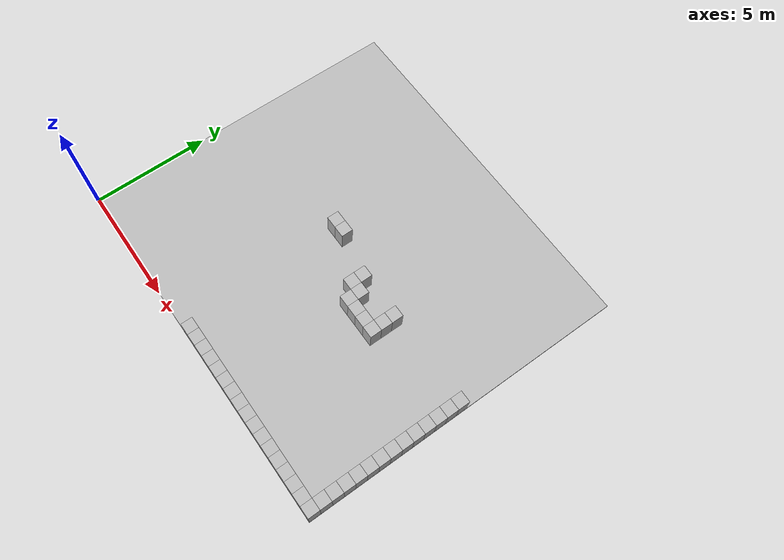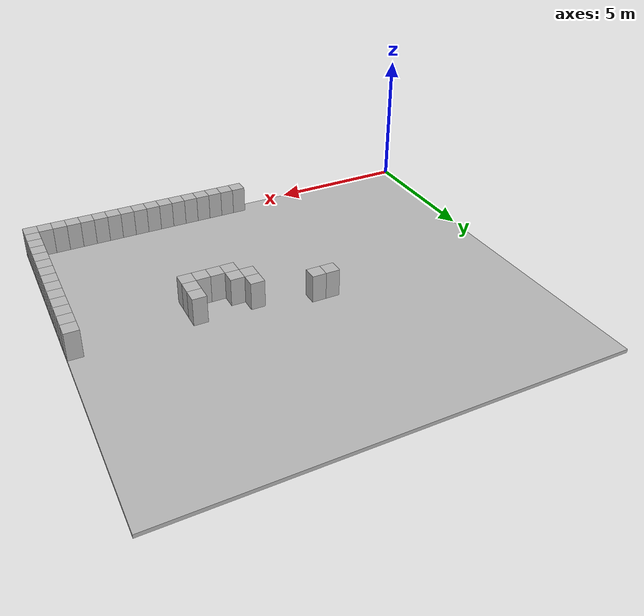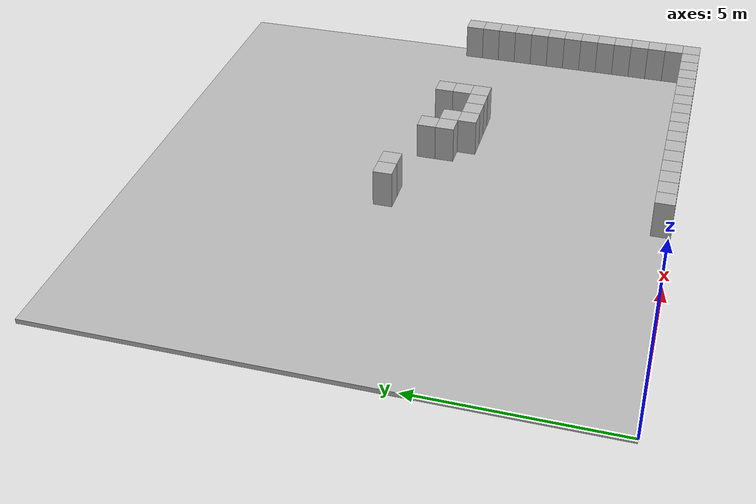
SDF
<sdf version="1.4">
 <world name="default">
  <model name="floor">
   <pose>7.75 7.0 -0.0625 0 0 0</pose>
   <static>true</static>
   <link name="link">
    <collision name="collision"><geometry><box><size>15.5 14.0 0.125</size></box></geometry></collision>
    <visual name="visual"><geometry><box><size>15.5 14.0 0.125</size></box></geometry></visual>
   </link>
  </model>
  <model name="box_13_14">
   <pose>6.75 7.25 0.5 0 0 0</pose>
   <static>true</static>
   <link name="link">
    <collision name="collision"><geometry><box><size>0.5 0.5 1.0</size></box></geometry></collision>
    <visual name="visual"><geometry><box><size>0.5 0.5 1.0</size></box></geometry></visual>
   </link>
  </model>
  <model name="box_14_0">
   <pose>7.25 0.25 0.5 0 0 0</pose>
   <static>true</static>
   <link name="link">
    <collision name="collision"><geometry><box><size>0.5 0.5 1.0</size></box></geometry></collision>
    <visual name="visual"><geometry><box><size>0.5 0.5 1.0</size></box></geometry></visual>
   </link>
  </model>
  <model name="box_14_14">
   <pose>7.25 7.25 0.5 0 0 0</pose>
   <static>true</static>
   <link name="link">
    <collision name="collision"><geometry><box><size>0.5 0.5 1.0</size></box></geometry></collision>
    <visual name="visual"><geometry><box><size>0.5 0.5 1.0</size></box></geometry></visual>
   </link>
  </model>
  <model name="box_15_0">
   <pose>7.75 0.25 0.5 0 0 0</pose>
   <static>true</static>
   <link name="link">
    <collision name="collision"><geometry><box><size>0.5 0.5 1.0</size></box></geometry></collision>
    <visual name="visual"><geometry><box><size>0.5 0.5 1.0</size></box></geometry></visual>
   </link>
  </model>
  <model name="box_16_0">
   <pose>8.25 0.25 0.5 0 0 0</pose>
   <static>true</static>
   <link name="link">
    <collision name="collision"><geometry><box><size>0.5 0.5 1.0</size></box></geometry></collision>
    <visual name="visual"><geometry><box><size>0.5 0.5 1.0</size></box></geometry></visual>
   </link>
  </model>
  <model name="box_17_0">
   <pose>8.75 0.25 0.5 0 0 0</pose>
   <static>true</static>
   <link name="link">
    <collision name="collision"><geometry><box><size>0.5 0.5 1.0</size></box></geometry></collision>
    <visual name="visual"><geometry><box><size>0.5 0.5 1.0</size></box></geometry></visual>
   </link>
  </model>
  <model name="box_18_0">
   <pose>9.25 0.25 0.5 0 0 0</pose>
   <static>true</static>
   <link name="link">
    <collision name="collision"><geometry><box><size>0.5 0.5 1.0</size></box></geometry></collision>
    <visual name="visual"><geometry><box><size>0.5 0.5 1.0</size></box></geometry></visual>
   </link>
  </model>
  <model name="box_18_12">
   <pose>9.25 6.25 0.5 0 0 0</pose>
   <static>true</static>
   <link name="link">
    <collision name="collision"><geometry><box><size>0.5 0.5 1.0</size></box></geometry></collision>
    <visual name="visual"><geometry><box><size>0.5 0.5 1.0</size></box></geometry></visual>
   </link>
  </model>
  <model name="box_18_13">
   <pose>9.25 6.75 0.5 0 0 0</pose>
   <static>true</static>
   <link name="link">
    <collision name="collision"><geometry><box><size>0.5 0.5 1.0</size></box></geometry></collision>
    <visual name="visual"><geometry><box><size>0.5 0.5 1.0</size></box></geometry></visual>
   </link>
  </model>
  <model name="box_19_0">
   <pose>9.75 0.25 0.5 0 0 0</pose>
   <static>true</static>
   <link name="link">
    <collision name="collision"><geometry><box><size>0.5 0.5 1.0</size></box></geometry></collision>
    <visual name="visual"><geometry><box><size>0.5 0.5 1.0</size></box></geometry></visual>
   </link>
  </model>
  <model name="box_19_11">
   <pose>9.75 5.75 0.5 0 0 0</pose>
   <static>true</static>
   <link name="link">
    <collision name="collision"><geometry><box><size>0.5 0.5 1.0</size></box></geometry></collision>
    <visual name="visual"><geometry><box><size>0.5 0.5 1.0</size></box></geometry></visual>
   </link>
  </model>
  <model name="box_19_12">
   <pose>9.75 6.25 0.5 0 0 0</pose>
   <static>true</static>
   <link name="link">
    <collision name="collision"><geometry><box><size>0.5 0.5 1.0</size></box></geometry></collision>
    <visual name="visual"><geometry><box><size>0.5 0.5 1.0</size></box></geometry></visual>
   </link>
  </model>
  <model name="box_20_0">
   <pose>10.25 0.25 0.5 0 0 0</pose>
   <static>true</static>
   <link name="link">
    <collision name="collision"><geometry><box><size>0.5 0.5 1.0</size></box></geometry></collision>
    <visual name="visual"><geometry><box><size>0.5 0.5 1.0</size></box></geometry></visual>
   </link>
  </model>
  <model name="box_20_11">
   <pose>10.25 5.75 0.5 0 0 0</pose>
   <static>true</static>
   <link name="link">
    <collision name="collision"><geometry><box><size>0.5 0.5 1.0</size></box></geometry></collision>
    <visual name="visual"><geometry><box><size>0.5 0.5 1.0</size></box></geometry></visual>
   </link>
  </model>
  <model name="box_21_0">
   <pose>10.75 0.25 0.5 0 0 0</pose>
   <static>true</static>
   <link name="link">
    <collision name="collision"><geometry><box><size>0.5 0.5 1.0</size></box></geometry></collision>
    <visual name="visual"><geometry><box><size>0.5 0.5 1.0</size></box></geometry></visual>
   </link>
  </model>
  <model name="box_21_11">
   <pose>10.75 5.75 0.5 0 0 0</pose>
   <static>true</static>
   <link name="link">
    <collision name="collision"><geometry><box><size>0.5 0.5 1.0</size></box></geometry></collision>
    <visual name="visual"><geometry><box><size>0.5 0.5 1.0</size></box></geometry></visual>
   </link>
  </model>
  <model name="box_22_0">
   <pose>11.25 0.25 0.5 0 0 0</pose>
   <static>true</static>
   <link name="link">
    <collision name="collision"><geometry><box><size>0.5 0.5 1.0</size></box></geometry></collision>
    <visual name="visual"><geometry><box><size>0.5 0.5 1.0</size></box></geometry></visual>
   </link>
  </model>
  <model name="box_22_11">
   <pose>11.25 5.75 0.5 0 0 0</pose>
   <static>true</static>
   <link name="link">
    <collision name="collision"><geometry><box><size>0.5 0.5 1.0</size></box></geometry></collision>
    <visual name="visual"><geometry><box><size>0.5 0.5 1.0</size></box></geometry></visual>
   </link>
  </model>
  <model name="box_22_12">
   <pose>11.25 6.25 0.5 0 0 0</pose>
   <static>true</static>
   <link name="link">
    <collision name="collision"><geometry><box><size>0.5 0.5 1.0</size></box></geometry></collision>
    <visual name="visual"><geometry><box><size>0.5 0.5 1.0</size></box></geometry></visual>
   </link>
  </model>
  <model name="box_22_13">
   <pose>11.25 6.75 0.5 0 0 0</pose>
   <static>true</static>
   <link name="link">
    <collision name="collision"><geometry><box><size>0.5 0.5 1.0</size></box></geometry></collision>
    <visual name="visual"><geometry><box><size>0.5 0.5 1.0</size></box></geometry></visual>
   </link>
  </model>
  <model name="box_23_0">
   <pose>11.75 0.25 0.5 0 0 0</pose>
   <static>true</static>
   <link name="link">
    <collision name="collision"><geometry><box><size>0.5 0.5 1.0</size></box></geometry></collision>
    <visual name="visual"><geometry><box><size>0.5 0.5 1.0</size></box></geometry></visual>
   </link>
  </model>
  <model name="box_24_0">
   <pose>12.25 0.25 0.5 0 0 0</pose>
   <static>true</static>
   <link name="link">
    <collision name="collision"><geometry><box><size>0.5 0.5 1.0</size></box></geometry></collision>
    <visual name="visual"><geometry><box><size>0.5 0.5 1.0</size></box></geometry></visual>
   </link>
  </model>
  <model name="box_25_0">
   <pose>12.75 0.25 0.5 0 0 0</pose>
   <static>true</static>
   <link name="link">
    <collision name="collision"><geometry><box><size>0.5 0.5 1.0</size></box></geometry></collision>
    <visual name="visual"><geometry><box><size>0.5 0.5 1.0</size></box></geometry></visual>
   </link>
  </model>
  <model name="box_26_0">
   <pose>13.25 0.25 0.5 0 0 0</pose>
   <static>true</static>
   <link name="link">
    <collision name="collision"><geometry><box><size>0.5 0.5 1.0</size></box></geometry></collision>
    <visual name="visual"><geometry><box><size>0.5 0.5 1.0</size></box></geometry></visual>
   </link>
  </model>
  <model name="box_27_0">
   <pose>13.75 0.25 0.5 0 0 0</pose>
   <static>true</static>
   <link name="link">
    <collision name="collision"><geometry><box><size>0.5 0.5 1.0</size></box></geometry></collision>
    <visual name="visual"><geometry><box><size>0.5 0.5 1.0</size></box></geometry></visual>
   </link>
  </model>
  <model name="box_28_0">
   <pose>14.25 0.25 0.5 0 0 0</pose>
   <static>true</static>
   <link name="link">
    <collision name="collision"><geometry><box><size>0.5 0.5 1.0</size></box></geometry></collision>
    <visual name="visual"><geometry><box><size>0.5 0.5 1.0</size></box></geometry></visual>
   </link>
  </model>
  <model name="box_29_0">
   <pose>14.75 0.25 0.5 0 0 0</pose>
   <static>true</static>
   <link name="link">
    <collision name="collision"><geometry><box><size>0.5 0.5 1.0</size></box></geometry></collision>
    <visual name="visual"><geometry><box><size>0.5 0.5 1.0</size></box></geometry></visual>
   </link>
  </model>
  <model name="box_30_0">
   <pose>15.25 0.25 0.5 0 0 0</pose>
   <static>true</static>
   <link name="link">
    <collision name="collision"><geometry><box><size>0.5 0.5 1.0</size></box></geometry></collision>
    <visual name="visual"><geometry><box><size>0.5 0.5 1.0</size></box></geometry></visual>
   </link>
  </model>
  <model name="box_30_1">
   <pose>15.25 0.75 0.5 0 0 0</pose>
   <static>true</static>
   <link name="link">
    <collision name="collision"><geometry><box><size>0.5 0.5 1.0</size></box></geometry></collision>
    <visual name="visual"><geometry><box><size>0.5 0.5 1.0</size></box></geometry></visual>
   </link>
  </model>
  <model name="box_30_2">
   <pose>15.25 1.25 0.5 0 0 0</pose>
   <static>true</static>
   <link name="link">
    <collision name="collision"><geometry><box><size>0.5 0.5 1.0</size></box></geometry></collision>
    <visual name="visual"><geometry><box><size>0.5 0.5 1.0</size></box></geometry></visual>
   </link>
  </model>
  <model name="box_30_3">
   <pose>15.25 1.75 0.5 0 0 0</pose>
   <static>true</static>
   <link name="link">
    <collision name="collision"><geometry><box><size>0.5 0.5 1.0</size></box></geometry></collision>
    <visual name="visual"><geometry><box><size>0.5 0.5 1.0</size></box></geometry></visual>
   </link>
  </model>
  <model name="box_30_4">
   <pose>15.25 2.25 0.5 0 0 0</pose>
   <static>true</static>
   <link name="link">
    <collision name="collision"><geometry><box><size>0.5 0.5 1.0</size></box></geometry></collision>
    <visual name="visual"><geometry><box><size>0.5 0.5 1.0</size></box></geometry></visual>
   </link>
  </model>
  <model name="box_30_5">
   <pose>15.25 2.75 0.5 0 0 0</pose>
   <static>true</static>
   <link name="link">
    <collision name="collision"><geometry><box><size>0.5 0.5 1.0</size></box></geometry></collision>
    <visual name="visual"><geometry><box><size>0.5 0.5 1.0</size></box></geometry></visual>
   </link>
  </model>
  <model name="box_30_6">
   <pose>15.25 3.25 0.5 0 0 0</pose>
   <static>true</static>
   <link name="link">
    <collision name="collision"><geometry><box><size>0.5 0.5 1.0</size></box></geometry></collision>
    <visual name="visual"><geometry><box><size>0.5 0.5 1.0</size></box></geometry></visual>
   </link>
  </model>
  <model name="box_30_7">
   <pose>15.25 3.75 0.5 0 0 0</pose>
   <static>true</static>
   <link name="link">
    <collision name="collision"><geometry><box><size>0.5 0.5 1.0</size></box></geometry></collision>
    <visual name="visual"><geometry><box><size>0.5 0.5 1.0</size></box></geometry></visual>
   </link>
  </model>
  <model name="box_30_8">
   <pose>15.25 4.25 0.5 0 0 0</pose>
   <static>true</static>
   <link name="link">
    <collision name="collision"><geometry><box><size>0.5 0.5 1.0</size></box></geometry></collision>
    <visual name="visual"><geometry><box><size>0.5 0.5 1.0</size></box></geometry></visual>
   </link>
  </model>
  <model name="box_30_9">
   <pose>15.25 4.75 0.5 0 0 0</pose>
   <static>true</static>
   <link name="link">
    <collision name="collision"><geometry><box><size>0.5 0.5 1.0</size></box></geometry></collision>
    <visual name="visual"><geometry><box><size>0.5 0.5 1.0</size></box></geometry></visual>
   </link>
  </model>
  <model name="box_30_10">
   <pose>15.25 5.25 0.5 0 0 0</pose>
   <static>true</static>
   <link name="link">
    <collision name="collision"><geometry><box><size>0.5 0.5 1.0</size></box></geometry></collision>
    <visual name="visual"><geometry><box><size>0.5 0.5 1.0</size></box></geometry></visual>
   </link>
  </model>
  <model name="box_30_11">
   <pose>15.25 5.75 0.5 0 0 0</pose>
   <static>true</static>
   <link name="link">
    <collision name="collision"><geometry><box><size>0.5 0.5 1.0</size></box></geometry></collision>
    <visual name="visual"><geometry><box><size>0.5 0.5 1.0</size></box></geometry></visual>
   </link>
  </model>
  <model name="box_30_12">
   <pose>15.25 6.25 0.5 0 0 0</pose>
   <static>true</static>
   <link name="link">
    <collision name="collision"><geometry><box><size>0.5 0.5 1.0</size></box></geometry></collision>
    <visual name="visual"><geometry><box><size>0.5 0.5 1.0</size></box></geometry></visual>
   </link>
  </model>
  <model name="box_30_13">
   <pose>15.25 6.75 0.5 0 0 0</pose>
   <static>true</static>
   <link name="link">
    <collision name="collision"><geometry><box><size>0.5 0.5 1.0</size></box></geometry></collision>
    <visual name="visual"><geometry><box><size>0.5 0.5 1.0</size></box></geometry></visual>
   </link>
  </model>
 </world>
</sdf>
